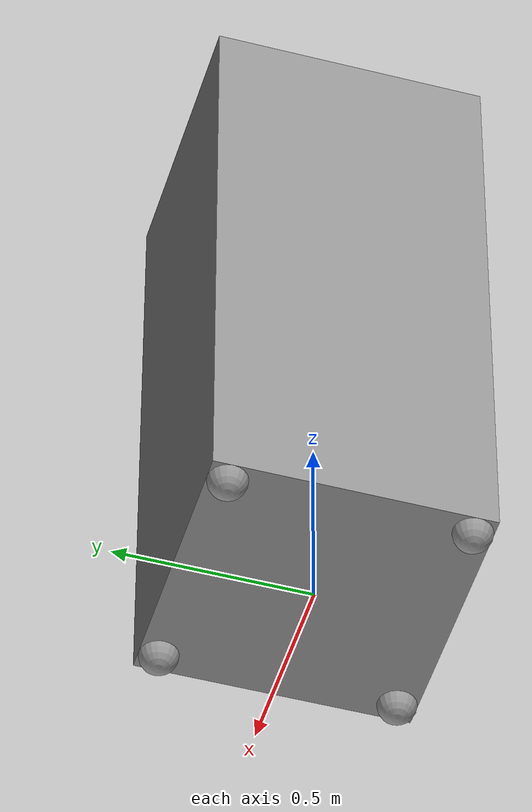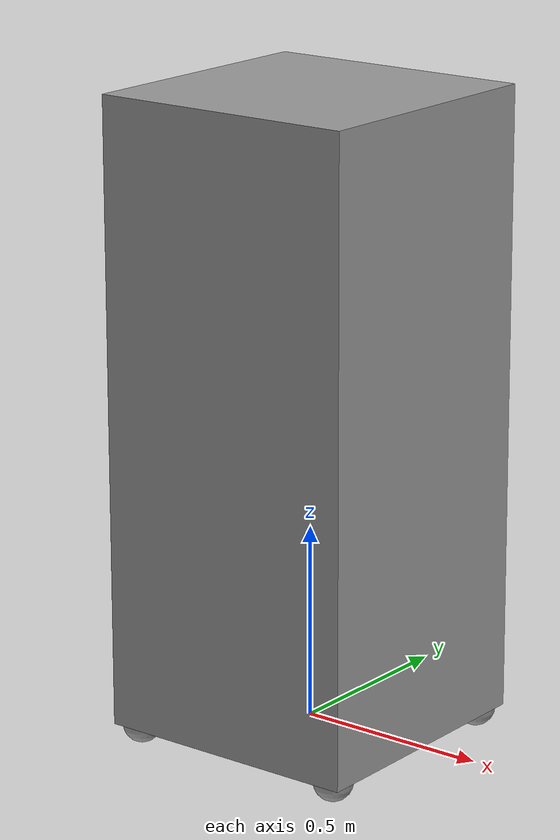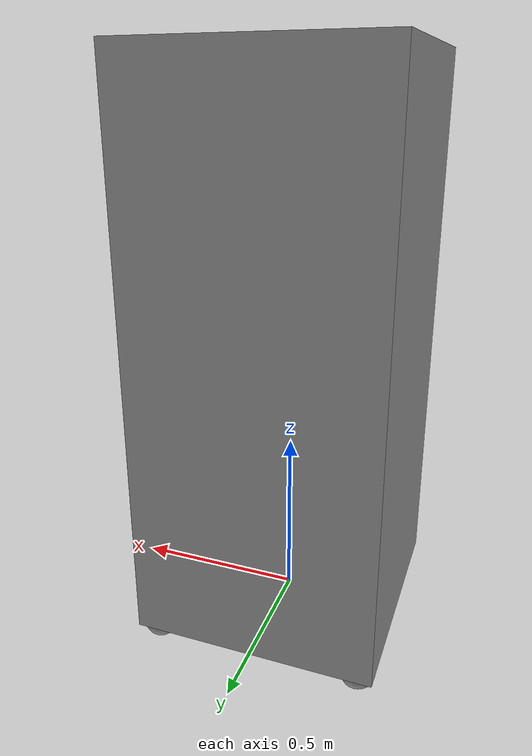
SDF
<?xml version='1.0'?>
<sdf version='1.7'>
  <model name='move_wheel_box'>
  <shadows>false</shadows>
    <link name='link_1'>
      <inertial>
        <mass>50</mass>
        <inertia>
          <ixx>12.7083</ixx>
          <ixy>0</ixy>
          <ixz>0</ixz>
          <iyy>12.7083</iyy>
          <iyz>0</iyz>
          <izz>4.08333</izz>
        </inertia>
        <pose>0 0 0 0 -0 0</pose>
      </inertial>
      <pose>-0.0 0.0 0.8 0 -0 0</pose>
      <gravity>1</gravity>
      <self_collide>0</self_collide>
      <kinematic>0</kinematic>
      <enable_wind>0</enable_wind>
      <visual name='visual'>
        <pose>0 0 0 0 -0 0</pose>
        <geometry>
          <box>
            <size>0.7 0.7 1.6</size>
          </box>
        </geometry>
        <material>
          <lighting>1</lighting>
          <script>
            <uri>file://media/materials/scripts/gazebo.material</uri>
            <name>Gazebo/Grey</name>
          </script>
          <shader type='pixel'>
            <normal_map>__default__</normal_map>
          </shader>
          <ambient>0.3 0.3 0.3 1</ambient>
          <diffuse>0.7 0.7 0.7 1</diffuse>
          <specular>0.01 0.01 0.01 1</specular>
          <emissive>0 0 0 1</emissive>
        </material>
        <transparency>0</transparency>
        <cast_shadows>0</cast_shadows>
      </visual>
      <collision name='collision'>
        <laser_retro>0</laser_retro>
        <max_contacts>10</max_contacts>
        <pose>0 0 0 0 -0 0</pose>
        <geometry>
          <box>
            <size>0.7 0.7 1.6</size>
          </box>
        </geometry>
        <surface>
          <friction>
            <ode>
              <mu>1</mu>
              <mu2>1</mu2>
              <fdir1>0 0 0</fdir1>
              <slip1>0</slip1>
              <slip2>0</slip2>
            </ode>
            <torsional>
              <coefficient>1</coefficient>
              <patch_radius>0</patch_radius>
              <surface_radius>0</surface_radius>
              <use_patch_radius>1</use_patch_radius>
              <ode>
                <slip>0</slip>
              </ode>
            </torsional>
          </friction>
          <bounce>
            <restitution_coefficient>0</restitution_coefficient>
            <threshold>1e+06</threshold>
          </bounce>
          <contact>
            <collide_without_contact>0</collide_without_contact>
            <collide_without_contact_bitmask>1</collide_without_contact_bitmask>
            <collide_bitmask>1</collide_bitmask>
            <ode>
              <soft_cfm>0</soft_cfm>
              <soft_erp>0.2</soft_erp>
              <kp>1e+13</kp>
              <kd>1</kd>
              <max_vel>0.01</max_vel>
              <min_depth>0</min_depth>
            </ode>
            <bullet>
              <split_impulse>1</split_impulse>
              <split_impulse_penetration_threshold>-0.01</split_impulse_penetration_threshold>
              <soft_cfm>0</soft_cfm>
              <soft_erp>0.2</soft_erp>
              <kp>1e+13</kp>
              <kd>1</kd>
            </bullet>
          </contact>
        </surface>
      </collision>
    </link>
    <plugin name='planar_move' filename='libgazebo_ros_planar_move.so'>
        <ros>
          <namespace>/demo</namespace>
          <remapping>cmd_vel:=cmd_demo</remapping>
          <remapping>odom:=odom_demo</remapping>
        </ros>

        <update_rate>100</update_rate>
        <publish_rate>10</publish_rate>

        <!-- output -->
        <publish_odom>true</publish_odom>
        <publish_odom_tf>true</publish_odom_tf>

        <odometry_frame>odom_demo</odometry_frame>
        <robot_base_frame>link</robot_base_frame>

        <covariance_x>0.0001</covariance_x>
        <covariance_y>0.0001</covariance_y>
        <covariance_yaw>0.01</covariance_yaw>
    </plugin>
    <link name='link_2'>
      <inertial>
        <mass>0.0311857</mass>
        <inertia>
          <ixx>0.00030897</ixx>
          <ixy>0</ixy>
          <ixz>0</ixz>
          <iyy>0.00030897</iyy>
          <iyz>0</iyz>
          <izz>0.00030897</izz>
        </inertia>
        <pose>0 0 0 0 -0 0</pose>
      </inertial>
      <pose>-0.3 -0.3 -0.0 0 -0 0</pose>
      <gravity>1</gravity>
      <self_collide>0</self_collide>
      <kinematic>0</kinematic>
      <enable_wind>0</enable_wind>
      <visual name='visual'>
        <pose>0 0 0 0 -0 0</pose>
        <geometry>
          <sphere>
            <radius>0.05</radius>
          </sphere>
        </geometry>
        <material>
          <lighting>1</lighting>
          <script>
            <uri>file://media/materials/scripts/gazebo.material</uri>
            <name>Gazebo/Grey</name>
          </script>
          <shader type='pixel'>
            <normal_map>__default__</normal_map>
          </shader>
          <ambient>0.3 0.3 0.3 1</ambient>
          <diffuse>0.7 0.7 0.7 1</diffuse>
          <specular>0.01 0.01 0.01 1</specular>
          <emissive>0 0 0 1</emissive>
        </material>
        <transparency>0</transparency>
        <cast_shadows>0</cast_shadows>
      </visual>
      <collision name='collision'>
        <laser_retro>0</laser_retro>
        <max_contacts>10</max_contacts>
        <pose>0 0 0 0 -0 0</pose>
        <geometry>
          <sphere>
            <radius>0.05</radius>
          </sphere>
        </geometry>
        <surface>
          <friction>
            <ode>
              <mu>1</mu>
              <mu2>1</mu2>
              <fdir1>0 0 0</fdir1>
              <slip1>0</slip1>
              <slip2>0</slip2>
            </ode>
            <torsional>
              <coefficient>1</coefficient>
              <patch_radius>0</patch_radius>
              <surface_radius>0</surface_radius>
              <use_patch_radius>1</use_patch_radius>
              <ode>
                <slip>0</slip>
              </ode>
            </torsional>
          </friction>
          <bounce>
            <restitution_coefficient>0</restitution_coefficient>
            <threshold>1e+06</threshold>
          </bounce>
          <contact>
            <collide_without_contact>0</collide_without_contact>
            <collide_without_contact_bitmask>1</collide_without_contact_bitmask>
            <collide_bitmask>1</collide_bitmask>
            <ode>
              <soft_cfm>0</soft_cfm>
              <soft_erp>0.2</soft_erp>
              <kp>1e+13</kp>
              <kd>1</kd>
              <max_vel>0.01</max_vel>
              <min_depth>0</min_depth>
            </ode>
            <bullet>
              <split_impulse>1</split_impulse>
              <split_impulse_penetration_threshold>-0.01</split_impulse_penetration_threshold>
              <soft_cfm>0</soft_cfm>
              <soft_erp>0.2</soft_erp>
              <kp>1e+13</kp>
              <kd>1</kd>
            </bullet>
          </contact>
        </surface>
      </collision>
    </link>
    <link name='link_2_clone'>
      <inertial>
        <mass>0.0311857</mass>
        <inertia>
          <ixx>0.00030897</ixx>
          <ixy>0</ixy>
          <ixz>0</ixz>
          <iyy>0.00030897</iyy>
          <iyz>0</iyz>
          <izz>0.00030897</izz>
        </inertia>
        <pose>0 0 0 0 -0 0</pose>
      </inertial>
      <pose>-0.3 0.3 -0.0 0 -0 0</pose>
      <gravity>1</gravity>
      <self_collide>0</self_collide>
      <kinematic>0</kinematic>
      <enable_wind>0</enable_wind>
      <visual name='visual'>
        <pose>0 0 0 0 -0 0</pose>
        <geometry>
          <sphere>
            <radius>0.05</radius>
          </sphere>
        </geometry>
        <material>
          <lighting>1</lighting>
          <script>
            <uri>file://media/materials/scripts/gazebo.material</uri>
            <name>Gazebo/Grey</name>
          </script>
          <shader type='pixel'>
            <normal_map>__default__</normal_map>
          </shader>
          <ambient>0.3 0.3 0.3 1</ambient>
          <diffuse>0.7 0.7 0.7 1</diffuse>
          <specular>0.01 0.01 0.01 1</specular>
          <emissive>0 0 0 1</emissive>
        </material>
        <transparency>0</transparency>
        <cast_shadows>0</cast_shadows>
      </visual>
      <collision name='collision'>
        <laser_retro>0</laser_retro>
        <max_contacts>10</max_contacts>
        <pose>0 0 0 0 -0 0</pose>
        <geometry>
          <sphere>
            <radius>0.05</radius>
          </sphere>
        </geometry>
        <surface>
          <friction>
            <ode>
              <mu>1</mu>
              <mu2>1</mu2>
              <fdir1>0 0 0</fdir1>
              <slip1>0</slip1>
              <slip2>0</slip2>
            </ode>
            <torsional>
              <coefficient>1</coefficient>
              <patch_radius>0</patch_radius>
              <surface_radius>0</surface_radius>
              <use_patch_radius>1</use_patch_radius>
              <ode>
                <slip>0</slip>
              </ode>
            </torsional>
          </friction>
          <bounce>
            <restitution_coefficient>0</restitution_coefficient>
            <threshold>1e+06</threshold>
          </bounce>
          <contact>
            <collide_without_contact>0</collide_without_contact>
            <collide_without_contact_bitmask>1</collide_without_contact_bitmask>
            <collide_bitmask>1</collide_bitmask>
            <ode>
              <soft_cfm>0</soft_cfm>
              <soft_erp>0.2</soft_erp>
              <kp>1e+13</kp>
              <kd>1</kd>
              <max_vel>0.01</max_vel>
              <min_depth>0</min_depth>
            </ode>
            <bullet>
              <split_impulse>1</split_impulse>
              <split_impulse_penetration_threshold>-0.01</split_impulse_penetration_threshold>
              <soft_cfm>0</soft_cfm>
              <soft_erp>0.2</soft_erp>
              <kp>1e+13</kp>
              <kd>1</kd>
            </bullet>
          </contact>
        </surface>
      </collision>
    </link>
    <link name='link_2_clone_0'>
      <inertial>
        <mass>0.0311857</mass>
        <inertia>
          <ixx>0.00030897</ixx>
          <ixy>0</ixy>
          <ixz>0</ixz>
          <iyy>0.00030897</iyy>
          <iyz>0</iyz>
          <izz>0.00030897</izz>
        </inertia>
        <pose>0 0 0 0 -0 0</pose>
      </inertial>
      <pose>0.3 -0.3 -0.0 0 -0 0</pose>
      <gravity>1</gravity>
      <self_collide>0</self_collide>
      <kinematic>0</kinematic>
      <enable_wind>0</enable_wind>
      <visual name='visual'>
        <pose>0 0 0 0 -0 0</pose>
        <geometry>
          <sphere>
            <radius>0.05</radius>
          </sphere>
        </geometry>
        <material>
          <lighting>1</lighting>
          <script>
            <uri>file://media/materials/scripts/gazebo.material</uri>
            <name>Gazebo/Grey</name>
          </script>
          <shader type='pixel'>
            <normal_map>__default__</normal_map>
          </shader>
          <ambient>0.3 0.3 0.3 1</ambient>
          <diffuse>0.7 0.7 0.7 1</diffuse>
          <specular>0.01 0.01 0.01 1</specular>
          <emissive>0 0 0 1</emissive>
        </material>
        <transparency>0</transparency>
        <cast_shadows>0</cast_shadows>
      </visual>
      <collision name='collision'>
        <laser_retro>0</laser_retro>
        <max_contacts>10</max_contacts>
        <pose>0 0 0 0 -0 0</pose>
        <geometry>
          <sphere>
            <radius>0.05</radius>
          </sphere>
        </geometry>
        <surface>
          <friction>
            <ode>
              <mu>1</mu>
              <mu2>1</mu2>
              <fdir1>0 0 0</fdir1>
              <slip1>0</slip1>
              <slip2>0</slip2>
            </ode>
            <torsional>
              <coefficient>1</coefficient>
              <patch_radius>0</patch_radius>
              <surface_radius>0</surface_radius>
              <use_patch_radius>1</use_patch_radius>
              <ode>
                <slip>0</slip>
              </ode>
            </torsional>
          </friction>
          <bounce>
            <restitution_coefficient>0</restitution_coefficient>
            <threshold>1e+06</threshold>
          </bounce>
          <contact>
            <collide_without_contact>0</collide_without_contact>
            <collide_without_contact_bitmask>1</collide_without_contact_bitmask>
            <collide_bitmask>1</collide_bitmask>
            <ode>
              <soft_cfm>0</soft_cfm>
              <soft_erp>0.2</soft_erp>
              <kp>1e+13</kp>
              <kd>1</kd>
              <max_vel>0.01</max_vel>
              <min_depth>0</min_depth>
            </ode>
            <bullet>
              <split_impulse>1</split_impulse>
              <split_impulse_penetration_threshold>-0.01</split_impulse_penetration_threshold>
              <soft_cfm>0</soft_cfm>
              <soft_erp>0.2</soft_erp>
              <kp>1e+13</kp>
              <kd>1</kd>
            </bullet>
          </contact>
        </surface>
      </collision>
    </link>
    <link name='link_2_clone_1'>
      <inertial>
        <mass>0.0311857</mass>
        <inertia>
          <ixx>0.00030897</ixx>
          <ixy>0</ixy>
          <ixz>0</ixz>
          <iyy>0.00030897</iyy>
          <iyz>0</iyz>
          <izz>0.00030897</izz>
        </inertia>
        <pose>0 0 0 0 -0 0</pose>
      </inertial>
      <pose>0.3 0.3 -0.0 0 -0 0</pose>
      <gravity>1</gravity>
      <self_collide>0</self_collide>
      <kinematic>0</kinematic>
      <enable_wind>0</enable_wind>
      <visual name='visual'>
        <pose>0 0 0 0 -0 0</pose>
        <geometry>
          <sphere>
            <radius>0.05</radius>
          </sphere>
        </geometry>
        <material>
          <lighting>1</lighting>
          <script>
            <uri>file://media/materials/scripts/gazebo.material</uri>
            <name>Gazebo/Grey</name>
          </script>
          <shader type='pixel'>
            <normal_map>__default__</normal_map>
          </shader>
          <ambient>0.3 0.3 0.3 1</ambient>
          <diffuse>0.7 0.7 0.7 1</diffuse>
          <specular>0.01 0.01 0.01 1</specular>
          <emissive>0 0 0 1</emissive>
        </material>
        <transparency>0</transparency>
        <cast_shadows>0</cast_shadows>
      </visual>
      <collision name='collision'>
        <laser_retro>0</laser_retro>
        <max_contacts>10</max_contacts>
        <pose>0 0 0 0 -0 0</pose>
        <geometry>
          <sphere>
            <radius>0.05</radius>
          </sphere>
        </geometry>
        <surface>
          <friction>
            <ode>
              <mu>1</mu>
              <mu2>1</mu2>
              <fdir1>0 0 0</fdir1>
              <slip1>0</slip1>
              <slip2>0</slip2>
            </ode>
            <torsional>
              <coefficient>1</coefficient>
              <patch_radius>0</patch_radius>
              <surface_radius>0</surface_radius>
              <use_patch_radius>1</use_patch_radius>
              <ode>
                <slip>0</slip>
              </ode>
            </torsional>
          </friction>
          <bounce>
            <restitution_coefficient>0</restitution_coefficient>
            <threshold>1e+06</threshold>
          </bounce>
          <contact>
            <collide_without_contact>0</collide_without_contact>
            <collide_without_contact_bitmask>1</collide_without_contact_bitmask>
            <collide_bitmask>1</collide_bitmask>
            <ode>
              <soft_cfm>0</soft_cfm>
              <soft_erp>0.2</soft_erp>
              <kp>1e+13</kp>
              <kd>1</kd>
              <max_vel>0.01</max_vel>
              <min_depth>0</min_depth>
            </ode>
            <bullet>
              <split_impulse>1</split_impulse>
              <split_impulse_penetration_threshold>-0.01</split_impulse_penetration_threshold>
              <soft_cfm>0</soft_cfm>
              <soft_erp>0.2</soft_erp>
              <kp>1e+13</kp>
              <kd>1</kd>
            </bullet>
          </contact>
        </surface>
      </collision>
    </link>

    <joint name='link_1_JOINT_1' type='ball'>
      <parent>link_1</parent>
      <child>link_2</child>
      <pose>0 0 0 0 -0 0</pose>
      <physics>
        <ode>
          <limit>
            <cfm>0</cfm>
            <erp>0.2</erp>
          </limit>
          <suspension>
            <cfm>0</cfm>
            <erp>0.2</erp>
          </suspension>
        </ode>
      </physics>
    </joint>
    <joint name='link_1_JOINT_2' type='ball'>
      <parent>link_1</parent>
      <child>link_2_clone</child>
      <pose>0 0 0 0 -0 0</pose>
      <physics>
        <ode>
          <limit>
            <cfm>0</cfm>
            <erp>0.2</erp>
          </limit>
          <suspension>
            <cfm>0</cfm>
            <erp>0.2</erp>
          </suspension>
        </ode>
      </physics>
    </joint>
    <joint name='link_1_JOINT_3' type='ball'>
      <parent>link_1</parent>
      <child>link_2_clone_0</child>
      <pose>0 0 0 0 -0 0</pose>
      <physics>
        <ode>
          <limit>
            <cfm>0</cfm>
            <erp>0.2</erp>
          </limit>
          <suspension>
            <cfm>0</cfm>
            <erp>0.2</erp>
          </suspension>
        </ode>
      </physics>
    </joint>
    <joint name='link_1_JOINT_4' type='ball'>
      <parent>link_1</parent>
      <child>link_2_clone_1</child>
      <pose>0 0 0 0 -0 0</pose>
      <physics>
        <ode>
          <limit>
            <cfm>0</cfm>
            <erp>0.2</erp>
          </limit>
          <suspension>
            <cfm>0</cfm>
            <erp>0.2</erp>
          </suspension>
        </ode>
      </physics>
    </joint>
    <static>0</static>
    <allow_auto_disable>1</allow_auto_disable>
  </model>
</sdf>
